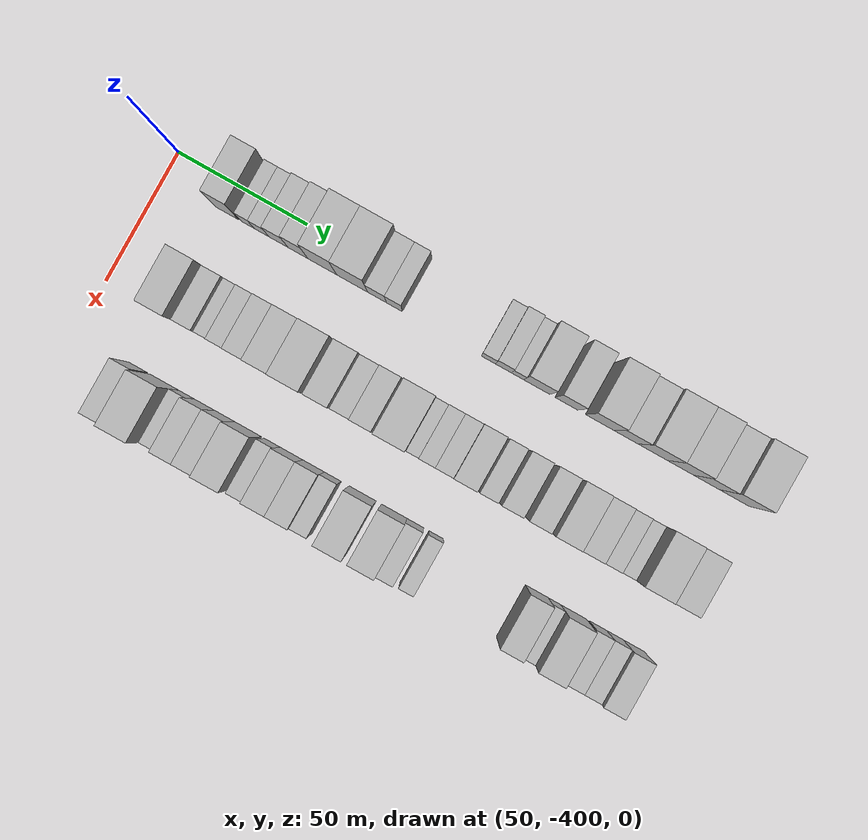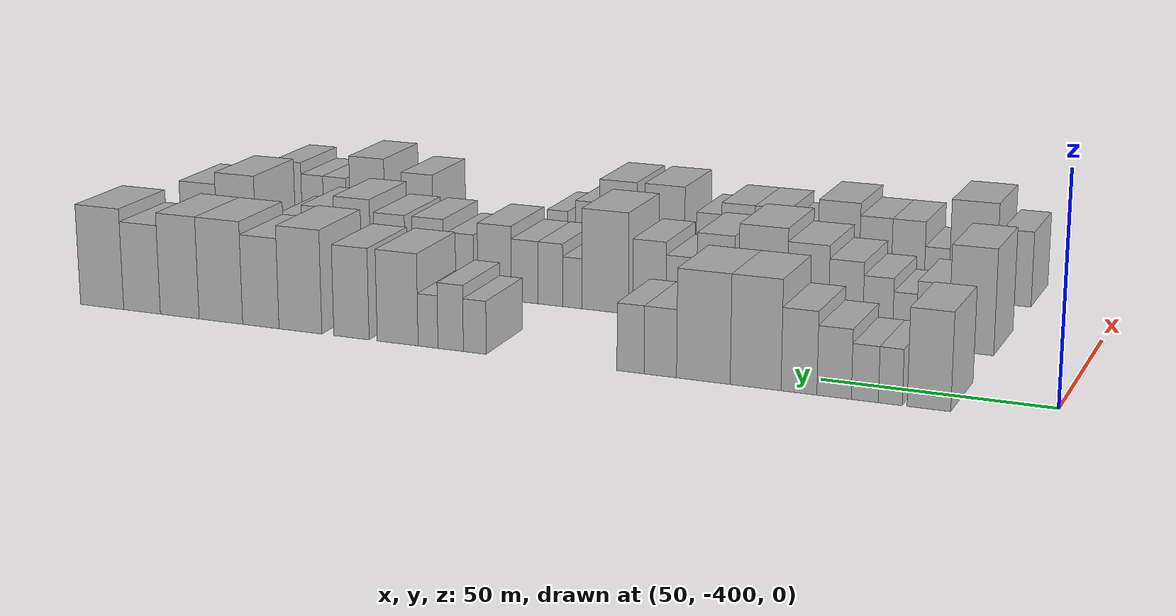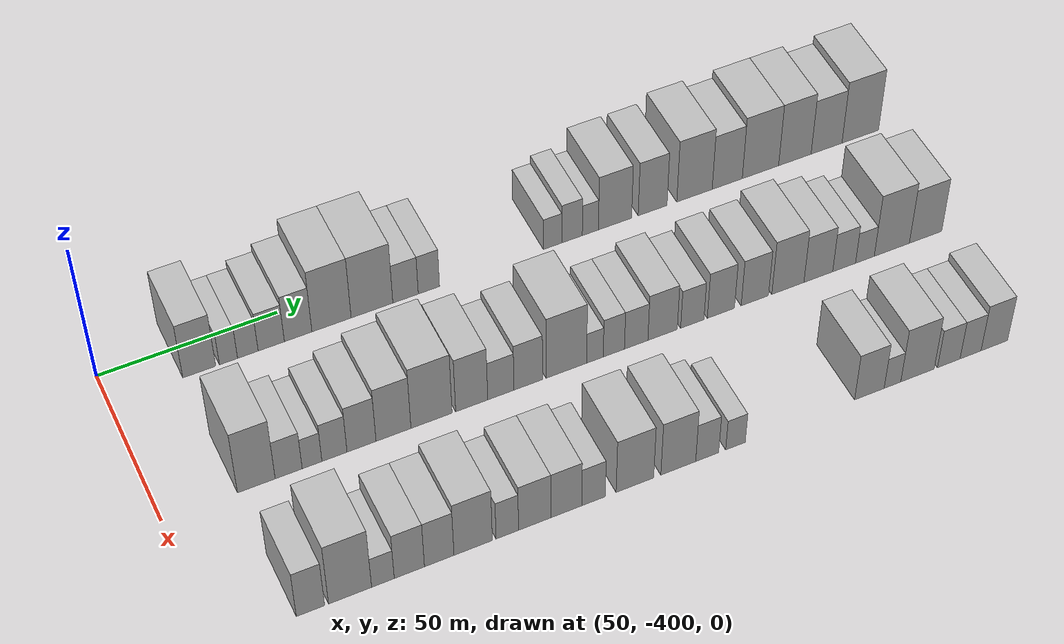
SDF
<sdf version="1.6">
 <world name="default">
  <model name="building_1">
   <static>1</static>
   <pose>50.0000 -375.4770 0 0.000000 0.000000 0.000000</pose>
   <link name="link">
    <pose>0 0 10.50 0 0 0</pose>
    <collision name="collision"><geometry><box><size>20.0000 9.0460 21.0000</size></box></geometry></collision>
    <visual name="visual">
     <cast_shadows>0</cast_shadows>
     <geometry><box><size>20.0000 9.0460 21.0000</size></box></geometry>
     <material>
      <script>
       <uri>model://HANNAS_wall/materials/scripts</uri>
       <uri>model://HANNAS_wall/materials/textures</uri>
       <name>vrc/HANNAS_wall</name>
      </script>
     </material>
    </visual>
   </link>
  </model>
  <model name="building_2">
   <static>1</static>
   <pose>50.0000 -367.4467 0 0.000000 0.000000 0.000000</pose>
   <link name="link">
    <pose>0 0 6.00 0 0 0</pose>
    <collision name="collision"><geometry><box><size>20.0000 5.0145 12.0000</size></box></geometry></collision>
    <visual name="visual">
     <cast_shadows>0</cast_shadows>
     <geometry><box><size>20.0000 5.0145 12.0000</size></box></geometry>
     <material>
      <script>
       <uri>model://HANNAS_wall/materials/scripts</uri>
       <uri>model://HANNAS_wall/materials/textures</uri>
       <name>vrc/HANNAS_wall</name>
      </script>
     </material>
    </visual>
   </link>
  </model>
  <model name="building_3">
   <static>1</static>
   <pose>50.0000 -362.0838 0 0.000000 0.000000 0.000000</pose>
   <link name="link">
    <pose>0 0 6.00 0 0 0</pose>
    <collision name="collision"><geometry><box><size>20.0000 5.7114 12.0000</size></box></geometry></collision>
    <visual name="visual">
     <cast_shadows>0</cast_shadows>
     <geometry><box><size>20.0000 5.7114 12.0000</size></box></geometry>
     <material>
      <script>
       <uri>model://HANNAS_wall/materials/scripts</uri>
       <uri>model://HANNAS_wall/materials/textures</uri>
       <name>vrc/HANNAS_wall</name>
      </script>
     </material>
    </visual>
   </link>
  </model>
  <model name="building_4">
   <static>1</static>
   <pose>50.0000 -355.5702 0 0.000000 0.000000 0.000000</pose>
   <link name="link">
    <pose>0 0 7.50 0 0 0</pose>
    <collision name="collision"><geometry><box><size>20.0000 7.3159 15.0000</size></box></geometry></collision>
    <visual name="visual">
     <cast_shadows>0</cast_shadows>
     <geometry><box><size>20.0000 7.3159 15.0000</size></box></geometry>
     <material>
      <script>
       <uri>model://HANNAS_wall/materials/scripts</uri>
       <uri>model://HANNAS_wall/materials/textures</uri>
       <name>vrc/HANNAS_wall</name>
      </script>
     </material>
    </visual>
   </link>
  </model>
  <model name="building_5">
   <static>1</static>
   <pose>50.0000 -348.0500 0 0.000000 0.000000 0.000000</pose>
   <link name="link">
    <pose>0 0 9.00 0 0 0</pose>
    <collision name="collision"><geometry><box><size>20.0000 7.7244 18.0000</size></box></geometry></collision>
    <visual name="visual">
     <cast_shadows>0</cast_shadows>
     <geometry><box><size>20.0000 7.7244 18.0000</size></box></geometry>
     <material>
      <script>
       <uri>model://HANNAS_wall/materials/scripts</uri>
       <uri>model://HANNAS_wall/materials/textures</uri>
       <name>vrc/HANNAS_wall</name>
      </script>
     </material>
    </visual>
   </link>
  </model>
  <model name="building_6">
   <static>1</static>
   <pose>50.0000 -338.6430 0 0.000000 0.000000 0.000000</pose>
   <link name="link">
    <pose>0 0 12.00 0 0 0</pose>
    <collision name="collision"><geometry><box><size>20.0000 11.0895 24.0000</size></box></geometry></collision>
    <visual name="visual">
     <cast_shadows>0</cast_shadows>
     <geometry><box><size>20.0000 11.0895 24.0000</size></box></geometry>
     <material>
      <script>
       <uri>model://HANNAS_wall/materials/scripts</uri>
       <uri>model://HANNAS_wall/materials/textures</uri>
       <name>vrc/HANNAS_wall</name>
      </script>
     </material>
    </visual>
   </link>
  </model>
  <model name="building_7">
   <static>1</static>
   <pose>50.0000 -327.1445 0 0.000000 0.000000 0.000000</pose>
   <link name="link">
    <pose>0 0 12.00 0 0 0</pose>
    <collision name="collision"><geometry><box><size>20.0000 11.9075 24.0000</size></box></geometry></collision>
    <visual name="visual">
     <cast_shadows>0</cast_shadows>
     <geometry><box><size>20.0000 11.9075 24.0000</size></box></geometry>
     <material>
      <script>
       <uri>model://HANNAS_wall/materials/scripts</uri>
       <uri>model://HANNAS_wall/materials/textures</uri>
       <name>vrc/HANNAS_wall</name>
      </script>
     </material>
    </visual>
   </link>
  </model>
  <model name="building_8">
   <static>1</static>
   <pose>50.0000 -317.5365 0 0.000000 0.000000 0.000000</pose>
   <link name="link">
    <pose>0 0 7.50 0 0 0</pose>
    <collision name="collision"><geometry><box><size>20.0000 7.3085 15.0000</size></box></geometry></collision>
    <visual name="visual">
     <cast_shadows>0</cast_shadows>
     <geometry><box><size>20.0000 7.3085 15.0000</size></box></geometry>
     <material>
      <script>
       <uri>model://HANNAS_wall/materials/scripts</uri>
       <uri>model://HANNAS_wall/materials/textures</uri>
       <name>vrc/HANNAS_wall</name>
      </script>
     </material>
    </visual>
   </link>
  </model>
  <model name="building_9">
   <static>1</static>
   <pose>50.0000 -310.8080 0 0.000000 0.000000 0.000000</pose>
   <link name="link">
    <pose>0 0 7.50 0 0 0</pose>
    <collision name="collision"><geometry><box><size>20.0000 6.1485 15.0000</size></box></geometry></collision>
    <visual name="visual">
     <cast_shadows>0</cast_shadows>
     <geometry><box><size>20.0000 6.1485 15.0000</size></box></geometry>
     <material>
      <script>
       <uri>model://HANNAS_wall/materials/scripts</uri>
       <uri>model://HANNAS_wall/materials/textures</uri>
       <name>vrc/HANNAS_wall</name>
      </script>
     </material>
    </visual>
   </link>
  </model>
  <model name="building_10">
   <static>1</static>
   <pose>50.0000 -274.5276 0 0.000000 0.000000 0.000000</pose>
   <link name="link">
    <pose>0 0 6.00 0 0 0</pose>
    <collision name="collision"><geometry><box><size>20.0000 5.4708 12.0000</size></box></geometry></collision>
    <visual name="visual">
     <cast_shadows>0</cast_shadows>
     <geometry><box><size>20.0000 5.4708 12.0000</size></box></geometry>
     <material>
      <script>
       <uri>model://HANNAS_wall/materials/scripts</uri>
       <uri>model://HANNAS_wall/materials/textures</uri>
       <name>vrc/HANNAS_wall</name>
      </script>
     </material>
    </visual>
   </link>
  </model>
  <model name="building_11">
   <static>1</static>
   <pose>50.0000 -268.7220 0 0.000000 0.000000 0.000000</pose>
   <link name="link">
    <pose>0 0 7.50 0 0 0</pose>
    <collision name="collision"><geometry><box><size>20.0000 6.1404 15.0000</size></box></geometry></collision>
    <visual name="visual">
     <cast_shadows>0</cast_shadows>
     <geometry><box><size>20.0000 6.1404 15.0000</size></box></geometry>
     <material>
      <script>
       <uri>model://HANNAS_wall/materials/scripts</uri>
       <uri>model://HANNAS_wall/materials/textures</uri>
       <name>vrc/HANNAS_wall</name>
      </script>
     </material>
    </visual>
   </link>
  </model>
  <model name="building_12">
   <static>1</static>
   <pose>50.0000 -263.2417 0 0.000000 0.000000 0.000000</pose>
   <link name="link">
    <pose>0 0 6.00 0 0 0</pose>
    <collision name="collision"><geometry><box><size>20.0000 4.8203 12.0000</size></box></geometry></collision>
    <visual name="visual">
     <cast_shadows>0</cast_shadows>
     <geometry><box><size>20.0000 4.8203 12.0000</size></box></geometry>
     <material>
      <script>
       <uri>model://HANNAS_wall/materials/scripts</uri>
       <uri>model://HANNAS_wall/materials/textures</uri>
       <name>vrc/HANNAS_wall</name>
      </script>
     </material>
    </visual>
   </link>
  </model>
  <model name="building_13">
   <static>1</static>
   <pose>50.0000 -255.8133 0 0.000000 0.000000 0.000000</pose>
   <link name="link">
    <pose>0 0 10.50 0 0 0</pose>
    <collision name="collision"><geometry><box><size>20.0000 10.0364 21.0000</size></box></geometry></collision>
    <visual name="visual">
     <cast_shadows>0</cast_shadows>
     <geometry><box><size>20.0000 10.0364 21.0000</size></box></geometry>
     <material>
      <script>
       <uri>model://HANNAS_wall/materials/scripts</uri>
       <uri>model://HANNAS_wall/materials/textures</uri>
       <name>vrc/HANNAS_wall</name>
      </script>
     </material>
    </visual>
   </link>
  </model>
  <model name="building_14">
   <static>1</static>
   <pose>50.0000 -244.3939 0 0.000000 0.000000 0.000000</pose>
   <link name="link">
    <pose>0 0 10.50 0 0 0</pose>
    <collision name="collision"><geometry><box><size>20.0000 8.8023 21.0000</size></box></geometry></collision>
    <visual name="visual">
     <cast_shadows>0</cast_shadows>
     <geometry><box><size>20.0000 8.8023 21.0000</size></box></geometry>
     <material>
      <script>
       <uri>model://HANNAS_wall/materials/scripts</uri>
       <uri>model://HANNAS_wall/materials/textures</uri>
       <name>vrc/HANNAS_wall</name>
      </script>
     </material>
    </visual>
   </link>
  </model>
  <model name="building_15">
   <static>1</static>
   <pose>50.0000 -231.5478 0 0.000000 0.000000 0.000000</pose>
   <link name="link">
    <pose>0 0 12.00 0 0 0</pose>
    <collision name="collision"><geometry><box><size>20.0000 10.8899 24.0000</size></box></geometry></collision>
    <visual name="visual">
     <cast_shadows>0</cast_shadows>
     <geometry><box><size>20.0000 10.8899 24.0000</size></box></geometry>
     <material>
      <script>
       <uri>model://HANNAS_wall/materials/scripts</uri>
       <uri>model://HANNAS_wall/materials/textures</uri>
       <name>vrc/HANNAS_wall</name>
      </script>
     </material>
    </visual>
   </link>
  </model>
  <model name="building_16">
   <static>1</static>
   <pose>50.0000 -221.4328 0 0.000000 0.000000 0.000000</pose>
   <link name="link">
    <pose>0 0 10.50 0 0 0</pose>
    <collision name="collision"><geometry><box><size>20.0000 9.3402 21.0000</size></box></geometry></collision>
    <visual name="visual">
     <cast_shadows>0</cast_shadows>
     <geometry><box><size>20.0000 9.3402 21.0000</size></box></geometry>
     <material>
      <script>
       <uri>model://HANNAS_wall/materials/scripts</uri>
       <uri>model://HANNAS_wall/materials/textures</uri>
       <name>vrc/HANNAS_wall</name>
      </script>
     </material>
    </visual>
   </link>
  </model>
  <model name="building_17">
   <static>1</static>
   <pose>50.0000 -211.0755 0 0.000000 0.000000 0.000000</pose>
   <link name="link">
    <pose>0 0 12.00 0 0 0</pose>
    <collision name="collision"><geometry><box><size>20.0000 11.3743 24.0000</size></box></geometry></collision>
    <visual name="visual">
     <cast_shadows>0</cast_shadows>
     <geometry><box><size>20.0000 11.3743 24.0000</size></box></geometry>
     <material>
      <script>
       <uri>model://HANNAS_wall/materials/scripts</uri>
       <uri>model://HANNAS_wall/materials/textures</uri>
       <name>vrc/HANNAS_wall</name>
      </script>
     </material>
    </visual>
   </link>
  </model>
  <model name="building_18">
   <static>1</static>
   <pose>50.0000 -200.2660 0 0.000000 0.000000 0.000000</pose>
   <link name="link">
    <pose>0 0 12.00 0 0 0</pose>
    <collision name="collision"><geometry><box><size>20.0000 10.2447 24.0000</size></box></geometry></collision>
    <visual name="visual">
     <cast_shadows>0</cast_shadows>
     <geometry><box><size>20.0000 10.2447 24.0000</size></box></geometry>
     <material>
      <script>
       <uri>model://HANNAS_wall/materials/scripts</uri>
       <uri>model://HANNAS_wall/materials/textures</uri>
       <name>vrc/HANNAS_wall</name>
      </script>
     </material>
    </visual>
   </link>
  </model>
  <model name="building_19">
   <static>1</static>
   <pose>50.0000 -190.2318 0 0.000000 0.000000 0.000000</pose>
   <link name="link">
    <pose>0 0 10.50 0 0 0</pose>
    <collision name="collision"><geometry><box><size>20.0000 9.8237 21.0000</size></box></geometry></collision>
    <visual name="visual">
     <cast_shadows>0</cast_shadows>
     <geometry><box><size>20.0000 9.8237 21.0000</size></box></geometry>
     <material>
      <script>
       <uri>model://HANNAS_wall/materials/scripts</uri>
       <uri>model://HANNAS_wall/materials/textures</uri>
       <name>vrc/HANNAS_wall</name>
      </script>
     </material>
    </visual>
   </link>
  </model>
  <model name="building_20">
   <static>1</static>
   <pose>50.0000 -179.4663 0 0.000000 0.000000 0.000000</pose>
   <link name="link">
    <pose>0 0 12.00 0 0 0</pose>
    <collision name="collision"><geometry><box><size>20.0000 11.7075 24.0000</size></box></geometry></collision>
    <visual name="visual">
     <cast_shadows>0</cast_shadows>
     <geometry><box><size>20.0000 11.7075 24.0000</size></box></geometry>
     <material>
      <script>
       <uri>model://HANNAS_wall/materials/scripts</uri>
       <uri>model://HANNAS_wall/materials/textures</uri>
       <name>vrc/HANNAS_wall</name>
      </script>
     </material>
    </visual>
   </link>
  </model>
  <model name="building_87">
   <static>1</static>
   <pose>90.0000 -374.9707 0 0.000000 0.000000 0.000000</pose>
   <link name="link">
    <pose>0 0 12.00 0 0 0</pose>
    <collision name="collision"><geometry><box><size>20.0000 10.0586 24.0000</size></box></geometry></collision>
    <visual name="visual">
     <cast_shadows>0</cast_shadows>
     <geometry><box><size>20.0000 10.0586 24.0000</size></box></geometry>
     <material>
      <script>
       <uri>model://HANNAS_wall/materials/scripts</uri>
       <uri>model://HANNAS_wall/materials/textures</uri>
       <name>vrc/HANNAS_wall</name>
      </script>
     </material>
    </visual>
   </link>
  </model>
  <model name="building_88">
   <static>1</static>
   <pose>90.0000 -366.3202 0 0.000000 0.000000 0.000000</pose>
   <link name="link">
    <pose>0 0 7.50 0 0 0</pose>
    <collision name="collision"><geometry><box><size>20.0000 7.2425 15.0000</size></box></geometry></collision>
    <visual name="visual">
     <cast_shadows>0</cast_shadows>
     <geometry><box><size>20.0000 7.2425 15.0000</size></box></geometry>
     <material>
      <script>
       <uri>model://HANNAS_wall/materials/scripts</uri>
       <uri>model://HANNAS_wall/materials/textures</uri>
       <name>vrc/HANNAS_wall</name>
      </script>
     </material>
    </visual>
   </link>
  </model>
  <model name="building_89">
   <static>1</static>
   <pose>90.0000 -360.0373 0 0.000000 0.000000 0.000000</pose>
   <link name="link">
    <pose>0 0 6.00 0 0 0</pose>
    <collision name="collision"><geometry><box><size>20.0000 5.3233 12.0000</size></box></geometry></collision>
    <visual name="visual">
     <cast_shadows>0</cast_shadows>
     <geometry><box><size>20.0000 5.3233 12.0000</size></box></geometry>
     <material>
      <script>
       <uri>model://HANNAS_wall/materials/scripts</uri>
       <uri>model://HANNAS_wall/materials/textures</uri>
       <name>vrc/HANNAS_wall</name>
      </script>
     </material>
    </visual>
   </link>
  </model>
  <model name="building_90">
   <static>1</static>
   <pose>90.0000 -353.9685 0 0.000000 0.000000 0.000000</pose>
   <link name="link">
    <pose>0 0 7.50 0 0 0</pose>
    <collision name="collision"><geometry><box><size>20.0000 6.8144 15.0000</size></box></geometry></collision>
    <visual name="visual">
     <cast_shadows>0</cast_shadows>
     <geometry><box><size>20.0000 6.8144 15.0000</size></box></geometry>
     <material>
      <script>
       <uri>model://HANNAS_wall/materials/scripts</uri>
       <uri>model://HANNAS_wall/materials/textures</uri>
       <name>vrc/HANNAS_wall</name>
      </script>
     </material>
    </visual>
   </link>
  </model>
  <model name="building_91">
   <static>1</static>
   <pose>90.0000 -346.6042 0 0.000000 0.000000 0.000000</pose>
   <link name="link">
    <pose>0 0 9.00 0 0 0</pose>
    <collision name="collision"><geometry><box><size>20.0000 7.9142 18.0000</size></box></geometry></collision>
    <visual name="visual">
     <cast_shadows>0</cast_shadows>
     <geometry><box><size>20.0000 7.9142 18.0000</size></box></geometry>
     <material>
      <script>
       <uri>model://HANNAS_wall/materials/scripts</uri>
       <uri>model://HANNAS_wall/materials/textures</uri>
       <name>vrc/HANNAS_wall</name>
      </script>
     </material>
    </visual>
   </link>
  </model>
  <model name="building_92">
   <static>1</static>
   <pose>90.0000 -337.8461 0 0.000000 0.000000 0.000000</pose>
   <link name="link">
    <pose>0 0 10.50 0 0 0</pose>
    <collision name="collision"><geometry><box><size>20.0000 9.6019 21.0000</size></box></geometry></collision>
    <visual name="visual">
     <cast_shadows>0</cast_shadows>
     <geometry><box><size>20.0000 9.6019 21.0000</size></box></geometry>
     <material>
      <script>
       <uri>model://HANNAS_wall/materials/scripts</uri>
       <uri>model://HANNAS_wall/materials/textures</uri>
       <name>vrc/HANNAS_wall</name>
      </script>
     </material>
    </visual>
   </link>
  </model>
  <model name="building_93">
   <static>1</static>
   <pose>90.0000 -327.3433 0 0.000000 0.000000 0.000000</pose>
   <link name="link">
    <pose>0 0 12.00 0 0 0</pose>
    <collision name="collision"><geometry><box><size>20.0000 11.4037 24.0000</size></box></geometry></collision>
    <visual name="visual">
     <cast_shadows>0</cast_shadows>
     <geometry><box><size>20.0000 11.4037 24.0000</size></box></geometry>
     <material>
      <script>
       <uri>model://HANNAS_wall/materials/scripts</uri>
       <uri>model://HANNAS_wall/materials/textures</uri>
       <name>vrc/HANNAS_wall</name>
      </script>
     </material>
    </visual>
   </link>
  </model>
  <model name="building_94">
   <static>1</static>
   <pose>90.0000 -316.1516 0 0.000000 0.000000 0.000000</pose>
   <link name="link">
    <pose>0 0 10.50 0 0 0</pose>
    <collision name="collision"><geometry><box><size>20.0000 8.9798 21.0000</size></box></geometry></collision>
    <visual name="visual">
     <cast_shadows>0</cast_shadows>
     <geometry><box><size>20.0000 8.9798 21.0000</size></box></geometry>
     <material>
      <script>
       <uri>model://HANNAS_wall/materials/scripts</uri>
       <uri>model://HANNAS_wall/materials/textures</uri>
       <name>vrc/HANNAS_wall</name>
      </script>
     </material>
    </visual>
   </link>
  </model>
  <model name="building_95">
   <static>1</static>
   <pose>90.0000 -307.9605 0 0.000000 0.000000 0.000000</pose>
   <link name="link">
    <pose>0 0 7.50 0 0 0</pose>
    <collision name="collision"><geometry><box><size>20.0000 7.4024 15.0000</size></box></geometry></collision>
    <visual name="visual">
     <cast_shadows>0</cast_shadows>
     <geometry><box><size>20.0000 7.4024 15.0000</size></box></geometry>
     <material>
      <script>
       <uri>model://HANNAS_wall/materials/scripts</uri>
       <uri>model://HANNAS_wall/materials/textures</uri>
       <name>vrc/HANNAS_wall</name>
      </script>
     </material>
    </visual>
   </link>
  </model>
  <model name="building_96">
   <static>1</static>
   <pose>90.0000 -300.2075 0 0.000000 0.000000 0.000000</pose>
   <link name="link">
    <pose>0 0 9.00 0 0 0</pose>
    <collision name="collision"><geometry><box><size>20.0000 8.1035 18.0000</size></box></geometry></collision>
    <visual name="visual">
     <cast_shadows>0</cast_shadows>
     <geometry><box><size>20.0000 8.1035 18.0000</size></box></geometry>
     <material>
      <script>
       <uri>model://HANNAS_wall/materials/scripts</uri>
       <uri>model://HANNAS_wall/materials/textures</uri>
       <name>vrc/HANNAS_wall</name>
      </script>
     </material>
    </visual>
   </link>
  </model>
  <model name="building_97">
   <static>1</static>
   <pose>90.0000 -289.3577 0 0.000000 0.000000 0.000000</pose>
   <link name="link">
    <pose>0 0 12.00 0 0 0</pose>
    <collision name="collision"><geometry><box><size>20.0000 11.5961 24.0000</size></box></geometry></collision>
    <visual name="visual">
     <cast_shadows>0</cast_shadows>
     <geometry><box><size>20.0000 11.5961 24.0000</size></box></geometry>
     <material>
      <script>
       <uri>model://HANNAS_wall/materials/scripts</uri>
       <uri>model://HANNAS_wall/materials/textures</uri>
       <name>vrc/HANNAS_wall</name>
      </script>
     </material>
    </visual>
   </link>
  </model>
  <model name="building_98">
   <static>1</static>
   <pose>90.0000 -281.1585 0 0.000000 0.000000 0.000000</pose>
   <link name="link">
    <pose>0 0 6.00 0 0 0</pose>
    <collision name="collision"><geometry><box><size>20.0000 4.8022 12.0000</size></box></geometry></collision>
    <visual name="visual">
     <cast_shadows>0</cast_shadows>
     <geometry><box><size>20.0000 4.8022 12.0000</size></box></geometry>
     <material>
      <script>
       <uri>model://HANNAS_wall/materials/scripts</uri>
       <uri>model://HANNAS_wall/materials/textures</uri>
       <name>vrc/HANNAS_wall</name>
      </script>
     </material>
    </visual>
   </link>
  </model>
  <model name="building_99">
   <static>1</static>
   <pose>90.0000 -275.6877 0 0.000000 0.000000 0.000000</pose>
   <link name="link">
    <pose>0 0 7.50 0 0 0</pose>
    <collision name="collision"><geometry><box><size>20.0000 6.1394 15.0000</size></box></geometry></collision>
    <visual name="visual">
     <cast_shadows>0</cast_shadows>
     <geometry><box><size>20.0000 6.1394 15.0000</size></box></geometry>
     <material>
      <script>
       <uri>model://HANNAS_wall/materials/scripts</uri>
       <uri>model://HANNAS_wall/materials/textures</uri>
       <name>vrc/HANNAS_wall</name>
      </script>
     </material>
    </visual>
   </link>
  </model>
  <model name="building_100">
   <static>1</static>
   <pose>90.0000 -269.2019 0 0.000000 0.000000 0.000000</pose>
   <link name="link">
    <pose>0 0 7.50 0 0 0</pose>
    <collision name="collision"><geometry><box><size>20.0000 6.8321 15.0000</size></box></geometry></collision>
    <visual name="visual">
     <cast_shadows>0</cast_shadows>
     <geometry><box><size>20.0000 6.8321 15.0000</size></box></geometry>
     <material>
      <script>
       <uri>model://HANNAS_wall/materials/scripts</uri>
       <uri>model://HANNAS_wall/materials/textures</uri>
       <name>vrc/HANNAS_wall</name>
      </script>
     </material>
    </visual>
   </link>
  </model>
  <model name="building_101">
   <static>1</static>
   <pose>90.0000 -261.4873 0 0.000000 0.000000 0.000000</pose>
   <link name="link">
    <pose>0 0 9.00 0 0 0</pose>
    <collision name="collision"><geometry><box><size>20.0000 8.5972 18.0000</size></box></geometry></collision>
    <visual name="visual">
     <cast_shadows>0</cast_shadows>
     <geometry><box><size>20.0000 8.5972 18.0000</size></box></geometry>
     <material>
      <script>
       <uri>model://HANNAS_wall/materials/scripts</uri>
       <uri>model://HANNAS_wall/materials/textures</uri>
       <name>vrc/HANNAS_wall</name>
      </script>
     </material>
    </visual>
   </link>
  </model>
  <model name="building_102">
   <static>1</static>
   <pose>90.0000 -252.7485 0 0.000000 0.000000 0.000000</pose>
   <link name="link">
    <pose>0 0 7.50 0 0 0</pose>
    <collision name="collision"><geometry><box><size>20.0000 6.8805 15.0000</size></box></geometry></collision>
    <visual name="visual">
     <cast_shadows>0</cast_shadows>
     <geometry><box><size>20.0000 6.8805 15.0000</size></box></geometry>
     <material>
      <script>
       <uri>model://HANNAS_wall/materials/scripts</uri>
       <uri>model://HANNAS_wall/materials/textures</uri>
       <name>vrc/HANNAS_wall</name>
      </script>
     </material>
    </visual>
   </link>
  </model>
  <model name="building_103">
   <static>1</static>
   <pose>90.0000 -244.2767 0 0.000000 0.000000 0.000000</pose>
   <link name="link">
    <pose>0 0 9.00 0 0 0</pose>
    <collision name="collision"><geometry><box><size>20.0000 8.0631 18.0000</size></box></geometry></collision>
    <visual name="visual">
     <cast_shadows>0</cast_shadows>
     <geometry><box><size>20.0000 8.0631 18.0000</size></box></geometry>
     <material>
      <script>
       <uri>model://HANNAS_wall/materials/scripts</uri>
       <uri>model://HANNAS_wall/materials/textures</uri>
       <name>vrc/HANNAS_wall</name>
      </script>
     </material>
    </visual>
   </link>
  </model>
  <model name="building_104">
   <static>1</static>
   <pose>90.0000 -234.1529 0 0.000000 0.000000 0.000000</pose>
   <link name="link">
    <pose>0 0 9.00 0 0 0</pose>
    <collision name="collision"><geometry><box><size>20.0000 8.1846 18.0000</size></box></geometry></collision>
    <visual name="visual">
     <cast_shadows>0</cast_shadows>
     <geometry><box><size>20.0000 8.1846 18.0000</size></box></geometry>
     <material>
      <script>
       <uri>model://HANNAS_wall/materials/scripts</uri>
       <uri>model://HANNAS_wall/materials/textures</uri>
       <name>vrc/HANNAS_wall</name>
      </script>
     </material>
    </visual>
   </link>
  </model>
  <model name="building_105">
   <static>1</static>
   <pose>90.0000 -224.2115 0 0.000000 0.000000 0.000000</pose>
   <link name="link">
    <pose>0 0 10.50 0 0 0</pose>
    <collision name="collision"><geometry><box><size>20.0000 9.6981 21.0000</size></box></geometry></collision>
    <visual name="visual">
     <cast_shadows>0</cast_shadows>
     <geometry><box><size>20.0000 9.6981 21.0000</size></box></geometry>
     <material>
      <script>
       <uri>model://HANNAS_wall/materials/scripts</uri>
       <uri>model://HANNAS_wall/materials/textures</uri>
       <name>vrc/HANNAS_wall</name>
      </script>
     </material>
    </visual>
   </link>
  </model>
  <model name="building_106">
   <static>1</static>
   <pose>90.0000 -214.9865 0 0.000000 0.000000 0.000000</pose>
   <link name="link">
    <pose>0 0 9.00 0 0 0</pose>
    <collision name="collision"><geometry><box><size>20.0000 8.7521 18.0000</size></box></geometry></collision>
    <visual name="visual">
     <cast_shadows>0</cast_shadows>
     <geometry><box><size>20.0000 8.7521 18.0000</size></box></geometry>
     <material>
      <script>
       <uri>model://HANNAS_wall/materials/scripts</uri>
       <uri>model://HANNAS_wall/materials/textures</uri>
       <name>vrc/HANNAS_wall</name>
      </script>
     </material>
    </visual>
   </link>
  </model>
  <model name="building_107">
   <static>1</static>
   <pose>90.0000 -207.1058 0 0.000000 0.000000 0.000000</pose>
   <link name="link">
    <pose>0 0 7.50 0 0 0</pose>
    <collision name="collision"><geometry><box><size>20.0000 7.0092 15.0000</size></box></geometry></collision>
    <visual name="visual">
     <cast_shadows>0</cast_shadows>
     <geometry><box><size>20.0000 7.0092 15.0000</size></box></geometry>
     <material>
      <script>
       <uri>model://HANNAS_wall/materials/scripts</uri>
       <uri>model://HANNAS_wall/materials/textures</uri>
       <name>vrc/HANNAS_wall</name>
      </script>
     </material>
    </visual>
   </link>
  </model>
  <model name="building_108">
   <static>1</static>
   <pose>90.0000 -200.7217 0 0.000000 0.000000 0.000000</pose>
   <link name="link">
    <pose>0 0 6.00 0 0 0</pose>
    <collision name="collision"><geometry><box><size>20.0000 5.7592 12.0000</size></box></geometry></collision>
    <visual name="visual">
     <cast_shadows>0</cast_shadows>
     <geometry><box><size>20.0000 5.7592 12.0000</size></box></geometry>
     <material>
      <script>
       <uri>model://HANNAS_wall/materials/scripts</uri>
       <uri>model://HANNAS_wall/materials/textures</uri>
       <name>vrc/HANNAS_wall</name>
      </script>
     </material>
    </visual>
   </link>
  </model>
  <model name="building_109">
   <static>1</static>
   <pose>90.0000 -192.4050 0 0.000000 0.000000 0.000000</pose>
   <link name="link">
    <pose>0 0 12.00 0 0 0</pose>
    <collision name="collision"><geometry><box><size>20.0000 10.8742 24.0000</size></box></geometry></collision>
    <visual name="visual">
     <cast_shadows>0</cast_shadows>
     <geometry><box><size>20.0000 10.8742 24.0000</size></box></geometry>
     <material>
      <script>
       <uri>model://HANNAS_wall/materials/scripts</uri>
       <uri>model://HANNAS_wall/materials/textures</uri>
       <name>vrc/HANNAS_wall</name>
      </script>
     </material>
    </visual>
   </link>
  </model>
  <model name="building_110">
   <static>1</static>
   <pose>90.0000 -181.9131 0 0.000000 0.000000 0.000000</pose>
   <link name="link">
    <pose>0 0 10.50 0 0 0</pose>
    <collision name="collision"><geometry><box><size>20.0000 10.1095 21.0000</size></box></geometry></collision>
    <visual name="visual">
     <cast_shadows>0</cast_shadows>
     <geometry><box><size>20.0000 10.1095 21.0000</size></box></geometry>
     <material>
      <script>
       <uri>model://HANNAS_wall/materials/scripts</uri>
       <uri>model://HANNAS_wall/materials/textures</uri>
       <name>vrc/HANNAS_wall</name>
      </script>
     </material>
    </visual>
   </link>
  </model>
  <model name="building_168">
   <static>1</static>
   <pose>130.0000 -376.3355 0 0.000000 0.000000 0.000000</pose>
   <link name="link">
    <pose>0 0 9.00 0 0 0</pose>
    <collision name="collision"><geometry><box><size>20.0000 7.3290 18.0000</size></box></geometry></collision>
    <visual name="visual">
     <cast_shadows>0</cast_shadows>
     <geometry><box><size>20.0000 7.3290 18.0000</size></box></geometry>
     <material>
      <script>
       <uri>model://HANNAS_wall/materials/scripts</uri>
       <uri>model://HANNAS_wall/materials/textures</uri>
       <name>vrc/HANNAS_wall</name>
      </script>
     </material>
    </visual>
   </link>
  </model>
  <model name="building_169">
   <static>1</static>
   <pose>130.0000 -366.0646 0 0.000000 0.000000 0.000000</pose>
   <link name="link">
    <pose>0 0 12.00 0 0 0</pose>
    <collision name="collision"><geometry><box><size>20.0000 11.2126 24.0000</size></box></geometry></collision>
    <visual name="visual">
     <cast_shadows>0</cast_shadows>
     <geometry><box><size>20.0000 11.2126 24.0000</size></box></geometry>
     <material>
      <script>
       <uri>model://HANNAS_wall/materials/scripts</uri>
       <uri>model://HANNAS_wall/materials/textures</uri>
       <name>vrc/HANNAS_wall</name>
      </script>
     </material>
    </visual>
   </link>
  </model>
  <model name="building_170">
   <static>1</static>
   <pose>130.0000 -357.4833 0 0.000000 0.000000 0.000000</pose>
   <link name="link">
    <pose>0 0 6.00 0 0 0</pose>
    <collision name="collision"><geometry><box><size>20.0000 5.9501 12.0000</size></box></geometry></collision>
    <visual name="visual">
     <cast_shadows>0</cast_shadows>
     <geometry><box><size>20.0000 5.9501 12.0000</size></box></geometry>
     <material>
      <script>
       <uri>model://HANNAS_wall/materials/scripts</uri>
       <uri>model://HANNAS_wall/materials/textures</uri>
       <name>vrc/HANNAS_wall</name>
      </script>
     </material>
    </visual>
   </link>
  </model>
  <model name="building_171">
   <static>1</static>
   <pose>130.0000 -350.5183 0 0.000000 0.000000 0.000000</pose>
   <link name="link">
    <pose>0 0 9.00 0 0 0</pose>
    <collision name="collision"><geometry><box><size>20.0000 7.9798 18.0000</size></box></geometry></collision>
    <visual name="visual">
     <cast_shadows>0</cast_shadows>
     <geometry><box><size>20.0000 7.9798 18.0000</size></box></geometry>
     <material>
      <script>
       <uri>model://HANNAS_wall/materials/scripts</uri>
       <uri>model://HANNAS_wall/materials/textures</uri>
       <name>vrc/HANNAS_wall</name>
      </script>
     </material>
    </visual>
   </link>
  </model>
  <model name="building_172">
   <static>1</static>
   <pose>130.0000 -342.6040 0 0.000000 0.000000 0.000000</pose>
   <link name="link">
    <pose>0 0 9.00 0 0 0</pose>
    <collision name="collision"><geometry><box><size>20.0000 7.8489 18.0000</size></box></geometry></collision>
    <visual name="visual">
     <cast_shadows>0</cast_shadows>
     <geometry><box><size>20.0000 7.8489 18.0000</size></box></geometry>
     <material>
      <script>
       <uri>model://HANNAS_wall/materials/scripts</uri>
       <uri>model://HANNAS_wall/materials/textures</uri>
       <name>vrc/HANNAS_wall</name>
      </script>
     </material>
    </visual>
   </link>
  </model>
  <model name="building_173">
   <static>1</static>
   <pose>130.0000 -333.5407 0 0.000000 0.000000 0.000000</pose>
   <link name="link">
    <pose>0 0 10.50 0 0 0</pose>
    <collision name="collision"><geometry><box><size>20.0000 10.2777 21.0000</size></box></geometry></collision>
    <visual name="visual">
     <cast_shadows>0</cast_shadows>
     <geometry><box><size>20.0000 10.2777 21.0000</size></box></geometry>
     <material>
      <script>
       <uri>model://HANNAS_wall/materials/scripts</uri>
       <uri>model://HANNAS_wall/materials/textures</uri>
       <name>vrc/HANNAS_wall</name>
      </script>
     </material>
    </visual>
   </link>
  </model>
  <model name="building_174">
   <static>1</static>
   <pose>130.0000 -324.3620 0 0.000000 0.000000 0.000000</pose>
   <link name="link">
    <pose>0 0 7.50 0 0 0</pose>
    <collision name="collision"><geometry><box><size>20.0000 6.0797 15.0000</size></box></geometry></collision>
    <visual name="visual">
     <cast_shadows>0</cast_shadows>
     <geometry><box><size>20.0000 6.0797 15.0000</size></box></geometry>
     <material>
      <script>
       <uri>model://HANNAS_wall/materials/scripts</uri>
       <uri>model://HANNAS_wall/materials/textures</uri>
       <name>vrc/HANNAS_wall</name>
      </script>
     </material>
    </visual>
   </link>
  </model>
  <model name="building_175">
   <static>1</static>
   <pose>130.0000 -316.9235 0 0.000000 0.000000 0.000000</pose>
   <link name="link">
    <pose>0 0 9.00 0 0 0</pose>
    <collision name="collision"><geometry><box><size>20.0000 8.7975 18.0000</size></box></geometry></collision>
    <visual name="visual">
     <cast_shadows>0</cast_shadows>
     <geometry><box><size>20.0000 8.7975 18.0000</size></box></geometry>
     <material>
      <script>
       <uri>model://HANNAS_wall/materials/scripts</uri>
       <uri>model://HANNAS_wall/materials/textures</uri>
       <name>vrc/HANNAS_wall</name>
      </script>
     </material>
    </visual>
   </link>
  </model>
  <model name="building_176">
   <static>1</static>
   <pose>130.0000 -308.2972 0 0.000000 0.000000 0.000000</pose>
   <link name="link">
    <pose>0 0 9.00 0 0 0</pose>
    <collision name="collision"><geometry><box><size>20.0000 8.4552 18.0000</size></box></geometry></collision>
    <visual name="visual">
     <cast_shadows>0</cast_shadows>
     <geometry><box><size>20.0000 8.4552 18.0000</size></box></geometry>
     <material>
      <script>
       <uri>model://HANNAS_wall/materials/scripts</uri>
       <uri>model://HANNAS_wall/materials/textures</uri>
       <name>vrc/HANNAS_wall</name>
      </script>
     </material>
    </visual>
   </link>
  </model>
  <model name="building_177">
   <static>1</static>
   <pose>130.0000 -300.8337 0 0.000000 0.000000 0.000000</pose>
   <link name="link">
    <pose>0 0 7.50 0 0 0</pose>
    <collision name="collision"><geometry><box><size>20.0000 6.4717 15.0000</size></box></geometry></collision>
    <visual name="visual">
     <cast_shadows>0</cast_shadows>
     <geometry><box><size>20.0000 6.4717 15.0000</size></box></geometry>
     <material>
      <script>
       <uri>model://HANNAS_wall/materials/scripts</uri>
       <uri>model://HANNAS_wall/materials/textures</uri>
       <name>vrc/HANNAS_wall</name>
      </script>
     </material>
    </visual>
   </link>
  </model>
  <model name="building_178">
   <static>1</static>
   <pose>130.0000 -289.3594 0 0.000000 0.000000 0.000000</pose>
   <link name="link">
    <pose>0 0 10.50 0 0 0</pose>
    <collision name="collision"><geometry><box><size>20.0000 10.4769 21.0000</size></box></geometry></collision>
    <visual name="visual">
     <cast_shadows>0</cast_shadows>
     <geometry><box><size>20.0000 10.4769 21.0000</size></box></geometry>
     <material>
      <script>
       <uri>model://HANNAS_wall/materials/scripts</uri>
       <uri>model://HANNAS_wall/materials/textures</uri>
       <name>vrc/HANNAS_wall</name>
      </script>
     </material>
    </visual>
   </link>
  </model>
  <model name="building_179">
   <static>1</static>
   <pose>130.0000 -277.2174 0 0.000000 0.000000 0.000000</pose>
   <link name="link">
    <pose>0 0 10.50 0 0 0</pose>
    <collision name="collision"><geometry><box><size>20.0000 9.8072 21.0000</size></box></geometry></collision>
    <visual name="visual">
     <cast_shadows>0</cast_shadows>
     <geometry><box><size>20.0000 9.8072 21.0000</size></box></geometry>
     <material>
      <script>
       <uri>model://HANNAS_wall/materials/scripts</uri>
       <uri>model://HANNAS_wall/materials/textures</uri>
       <name>vrc/HANNAS_wall</name>
      </script>
     </material>
    </visual>
   </link>
  </model>
  <model name="building_180">
   <static>1</static>
   <pose>130.0000 -269.0603 0 0.000000 0.000000 0.000000</pose>
   <link name="link">
    <pose>0 0 7.50 0 0 0</pose>
    <collision name="collision"><geometry><box><size>20.0000 6.5068 15.0000</size></box></geometry></collision>
    <visual name="visual">
     <cast_shadows>0</cast_shadows>
     <geometry><box><size>20.0000 6.5068 15.0000</size></box></geometry>
     <material>
      <script>
       <uri>model://HANNAS_wall/materials/scripts</uri>
       <uri>model://HANNAS_wall/materials/textures</uri>
       <name>vrc/HANNAS_wall</name>
      </script>
     </material>
    </visual>
   </link>
  </model>
  <model name="building_181">
   <static>1</static>
   <pose>130.0000 -261.0155 0 0.000000 0.000000 0.000000</pose>
   <link name="link">
    <pose>0 0 6.00 0 0 0</pose>
    <collision name="collision"><geometry><box><size>20.0000 5.5828 12.0000</size></box></geometry></collision>
    <visual name="visual">
     <cast_shadows>0</cast_shadows>
     <geometry><box><size>20.0000 5.5828 12.0000</size></box></geometry>
     <material>
      <script>
       <uri>model://HANNAS_wall/materials/scripts</uri>
       <uri>model://HANNAS_wall/materials/textures</uri>
       <name>vrc/HANNAS_wall</name>
      </script>
     </material>
    </visual>
   </link>
  </model>
  <model name="building_182">
   <static>1</static>
   <pose>130.0000 -222.1650 0 0.000000 0.000000 0.000000</pose>
   <link name="link">
    <pose>0 0 9.00 0 0 0</pose>
    <collision name="collision"><geometry><box><size>20.0000 8.7060 18.0000</size></box></geometry></collision>
    <visual name="visual">
     <cast_shadows>0</cast_shadows>
     <geometry><box><size>20.0000 8.7060 18.0000</size></box></geometry>
     <material>
      <script>
       <uri>model://HANNAS_wall/materials/scripts</uri>
       <uri>model://HANNAS_wall/materials/textures</uri>
       <name>vrc/HANNAS_wall</name>
      </script>
     </material>
    </visual>
   </link>
  </model>
  <model name="building_183">
   <static>1</static>
   <pose>130.0000 -215.3469 0 0.000000 0.000000 0.000000</pose>
   <link name="link">
    <pose>0 0 6.00 0 0 0</pose>
    <collision name="collision"><geometry><box><size>20.0000 4.9303 12.0000</size></box></geometry></collision>
    <visual name="visual">
     <cast_shadows>0</cast_shadows>
     <geometry><box><size>20.0000 4.9303 12.0000</size></box></geometry>
     <material>
      <script>
       <uri>model://HANNAS_wall/materials/scripts</uri>
       <uri>model://HANNAS_wall/materials/textures</uri>
       <name>vrc/HANNAS_wall</name>
      </script>
     </material>
    </visual>
   </link>
  </model>
  <model name="building_184">
   <static>1</static>
   <pose>130.0000 -207.9039 0 0.000000 0.000000 0.000000</pose>
   <link name="link">
    <pose>0 0 10.50 0 0 0</pose>
    <collision name="collision"><geometry><box><size>20.0000 9.9556 21.0000</size></box></geometry></collision>
    <visual name="visual">
     <cast_shadows>0</cast_shadows>
     <geometry><box><size>20.0000 9.9556 21.0000</size></box></geometry>
     <material>
      <script>
       <uri>model://HANNAS_wall/materials/scripts</uri>
       <uri>model://HANNAS_wall/materials/textures</uri>
       <name>vrc/HANNAS_wall</name>
      </script>
     </material>
    </visual>
   </link>
  </model>
  <model name="building_185">
   <static>1</static>
   <pose>130.0000 -198.5368 0 0.000000 0.000000 0.000000</pose>
   <link name="link">
    <pose>0 0 7.50 0 0 0</pose>
    <collision name="collision"><geometry><box><size>20.0000 6.7786 15.0000</size></box></geometry></collision>
    <visual name="visual">
     <cast_shadows>0</cast_shadows>
     <geometry><box><size>20.0000 6.7786 15.0000</size></box></geometry>
     <material>
      <script>
       <uri>model://HANNAS_wall/materials/scripts</uri>
       <uri>model://HANNAS_wall/materials/textures</uri>
       <name>vrc/HANNAS_wall</name>
      </script>
     </material>
    </visual>
   </link>
  </model>
  <model name="building_186">
   <static>1</static>
   <pose>130.0000 -191.9744 0 0.000000 0.000000 0.000000</pose>
   <link name="link">
    <pose>0 0 7.50 0 0 0</pose>
    <collision name="collision"><geometry><box><size>20.0000 6.3463 15.0000</size></box></geometry></collision>
    <visual name="visual">
     <cast_shadows>0</cast_shadows>
     <geometry><box><size>20.0000 6.3463 15.0000</size></box></geometry>
     <material>
      <script>
       <uri>model://HANNAS_wall/materials/scripts</uri>
       <uri>model://HANNAS_wall/materials/textures</uri>
       <name>vrc/HANNAS_wall</name>
      </script>
     </material>
    </visual>
   </link>
  </model>
  <model name="building_187">
   <static>1</static>
   <pose>130.0000 -184.7704 0 0.000000 0.000000 0.000000</pose>
   <link name="link">
    <pose>0 0 9.00 0 0 0</pose>
    <collision name="collision"><geometry><box><size>20.0000 8.0616 18.0000</size></box></geometry></collision>
    <visual name="visual">
     <cast_shadows>0</cast_shadows>
     <geometry><box><size>20.0000 8.0616 18.0000</size></box></geometry>
     <material>
      <script>
       <uri>model://HANNAS_wall/materials/scripts</uri>
       <uri>model://HANNAS_wall/materials/textures</uri>
       <name>vrc/HANNAS_wall</name>
      </script>
     </material>
    </visual>
   </link>
  </model>
 </world>
</sdf>
